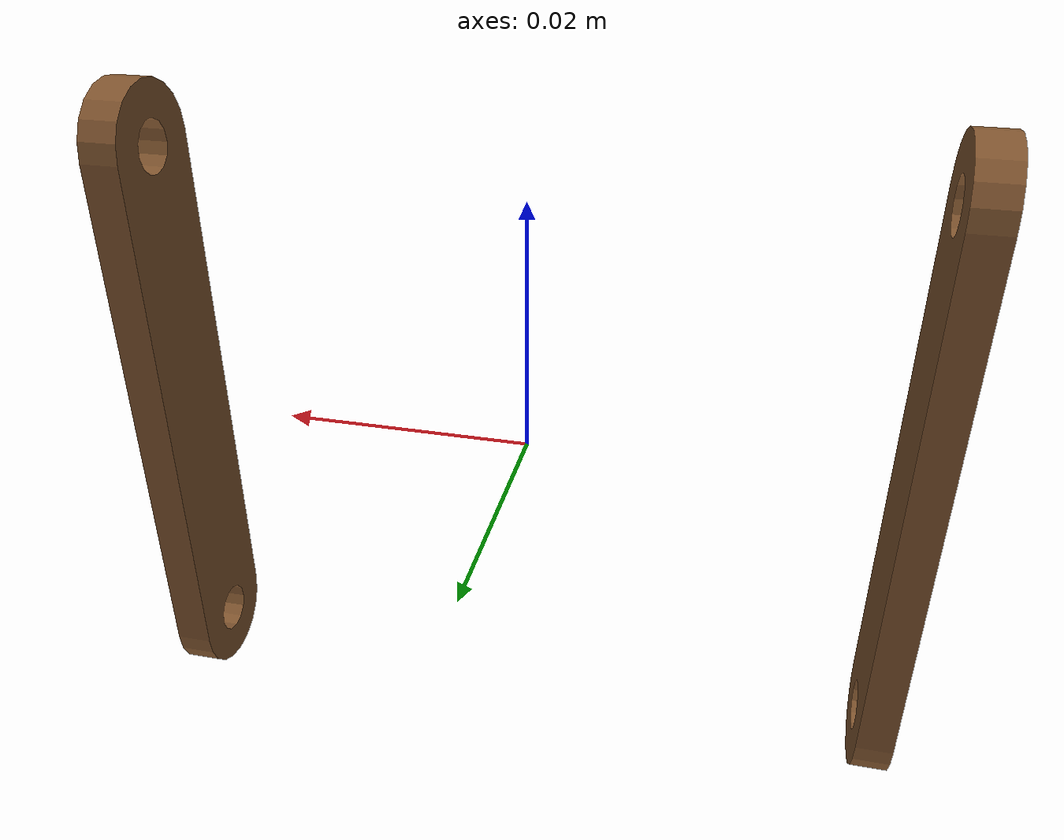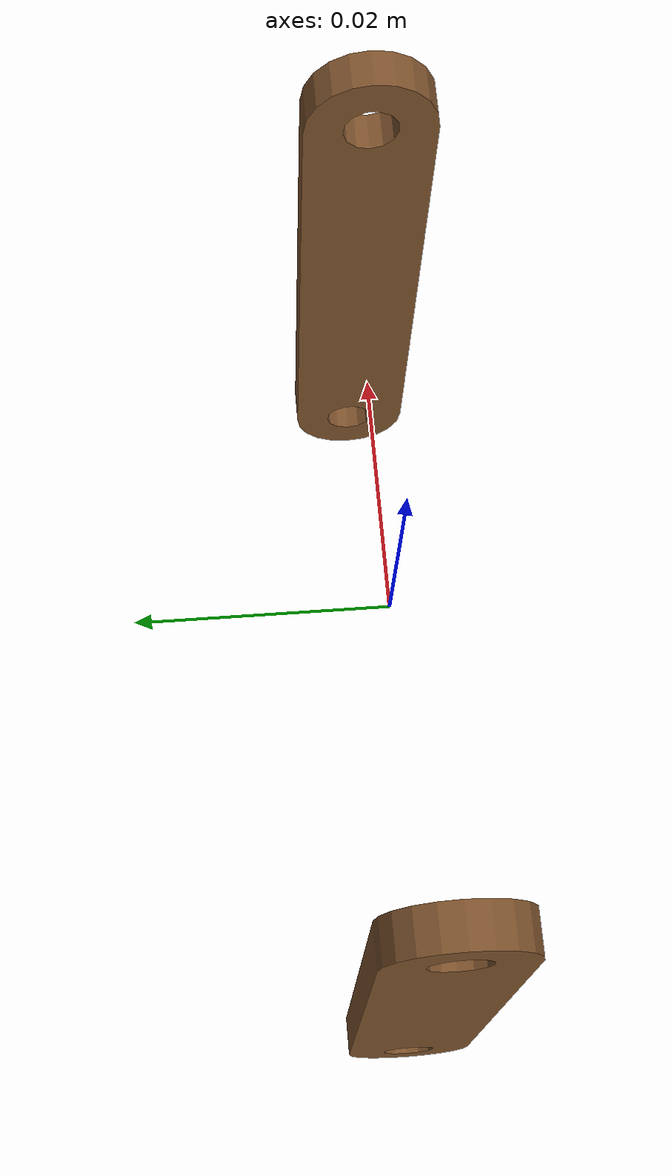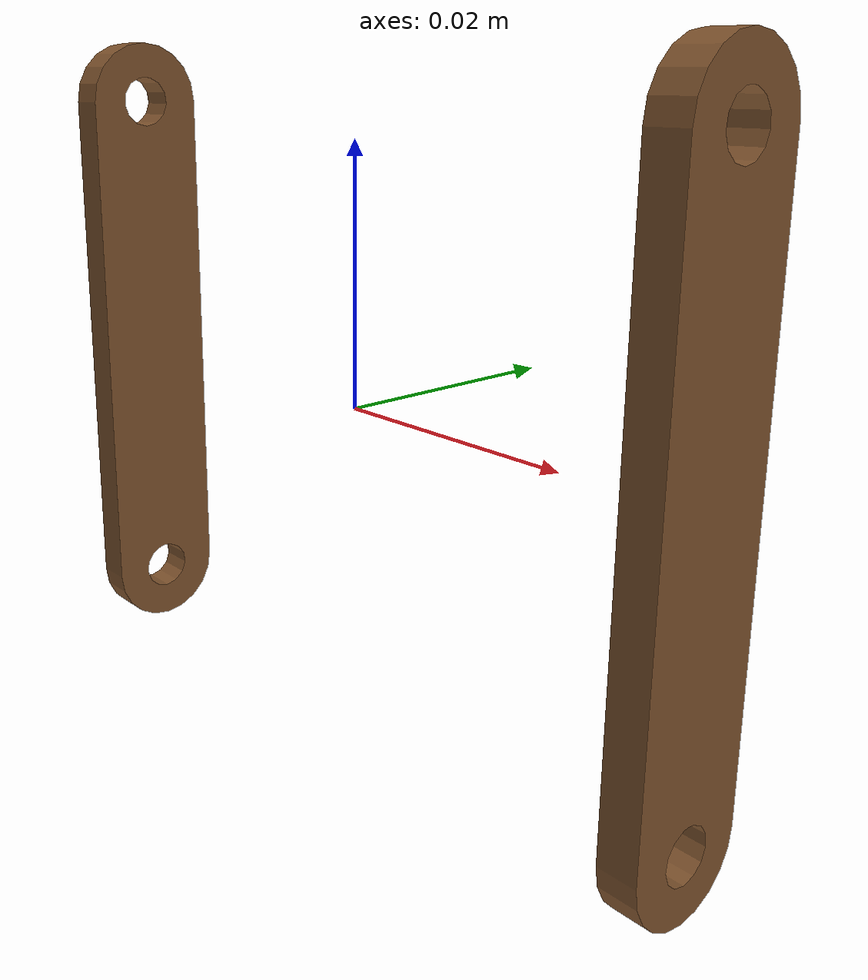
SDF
<?xml version="1.0" ?>

  <sdf version="1.5">
    <model name="iwp_claw_tie">
      <link name='base_link'>
      <inertial>
        <pose>0 0 0 0 0 0</pose>
        <mass>0.1</mass>
        <inertia>
          <ixx>0.01</ixx>
          <ixy>0</ixy>
          <ixz>0</ixz>
          <iyy>0.01</iyy>
          <iyz>0</iyz>
          <izz>0.01</izz>
        </inertia>
      </inertial>
    </link>
    <link name='tie_0'>
    <pose>-0.03 -0.0 0.0 0 -0 0</pose>
    <inertial>
      <pose>0 0 0 0 -0 0</pose>
      <mass>0.025</mass>
      <inertia>
        <ixx>9.75e-06</ixx>
        <ixy>0</ixy>
        <ixz>0</ixz>
        <iyy>0.000166704</iyy>
        <iyz>0</iyz>
        <izz>0.000167604</izz>
      </inertia>
    </inertial>
    <collision name='tie_0_collision'>
      <pose>0 0 0 0 -0 0</pose>
      <geometry>
        <mesh>
          <scale>1 1 1</scale>
          <uri>model://iwp_claw_tie/meshes/claw_tie.STL</uri>
        </mesh>
      </geometry>
      <surface>
        <contact>
          <ode />
        </contact>
        <friction>
          <ode />
        </friction>
      </surface>
    </collision>
    <visual name='tie_0_visual'>
      <pose>0 0 0 0 -0 0</pose>
      <geometry>
        <mesh>
          <scale>1 1 1</scale>
          <uri>model://iwp_claw_tie/meshes/claw_tie.STL</uri>
        </mesh>
      </geometry>
      <material>
        <script>
          <name>Gazebo/Brown</name>
          <uri>__default__</uri>
        </script>
      </material>
    </visual>
    <gravity>1</gravity>
    <velocity_decay />
    <self_collide>0</self_collide>
  </link>
  <link name='tie_1'>
  <pose>0.03 -0.0 0.0 0 -0 0</pose>
  <inertial>
    <pose>0 0 0 0 -0 0</pose>
    <mass>0.025</mass>
    <inertia>
      <ixx>9.75e-06</ixx>
      <ixy>0</ixy>
      <ixz>0</ixz>
      <iyy>0.000166704</iyy>
      <iyz>0</iyz>
      <izz>0.000167604</izz>
    </inertia>
  </inertial>
  <collision name='tie_0_collision'>
    <pose>0 0 0 0 -0 0</pose>
    <geometry>
      <mesh>
        <scale>1 1 1</scale>
        <uri>model://iwp_claw_tie/meshes/claw_tie.STL</uri>
      </mesh>
    </geometry>
    <surface>
      <contact>
        <ode />
      </contact>
      <friction>
        <ode />
      </friction>
    </surface>
  </collision>
  <visual name='tie_0_visual'>
    <pose>0 0 0 0 -0 0</pose>
    <geometry>
      <mesh>
        <scale>1 1 1</scale>
        <uri>model://iwp_claw_tie/meshes/claw_tie.STL</uri>
      </mesh>
    </geometry>
    <material>
      <script>
        <name>Gazebo/Brown</name>
        <uri>__default__</uri>
      </script>
    </material>
  </visual>
  <gravity>1</gravity>
  <velocity_decay />
  <self_collide>0</self_collide>
</link>
<joint name="claw_tie_joint" type="fixed">
  <parent>tie_0</parent>
  <child>tie_1</child>
  <pose>0.0 0 0.0 0 0 0</pose>
</joint>
<joint name="base_link_joint" type="fixed">
  <parent>base_link</parent>
  <child>tie_0</child>
  <pose>0.0 0 0.0 0 0 0</pose>
</joint>
</model>
</sdf>
